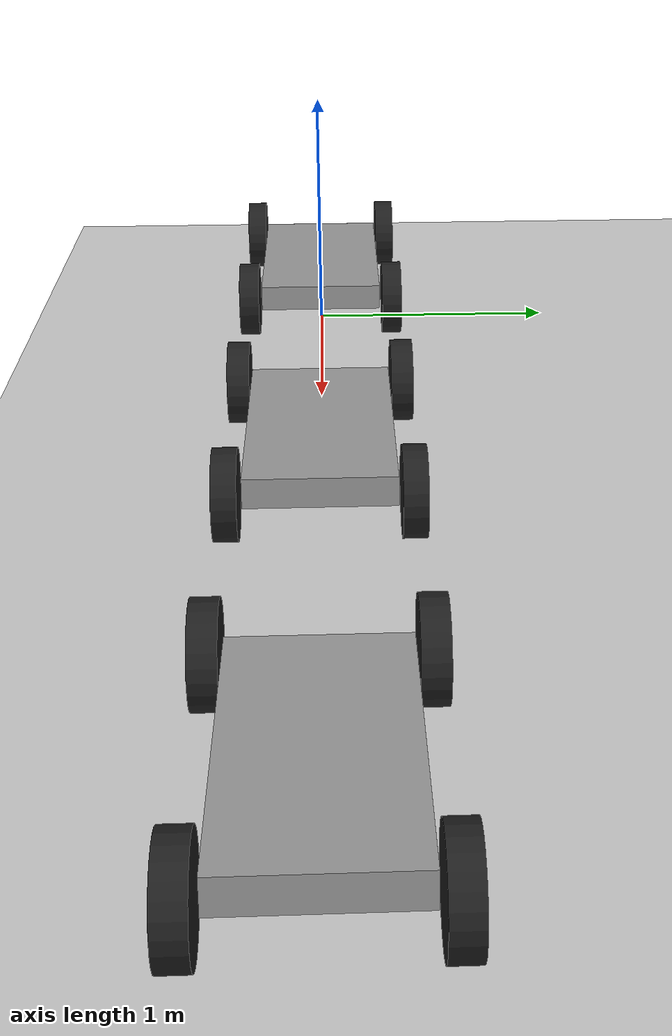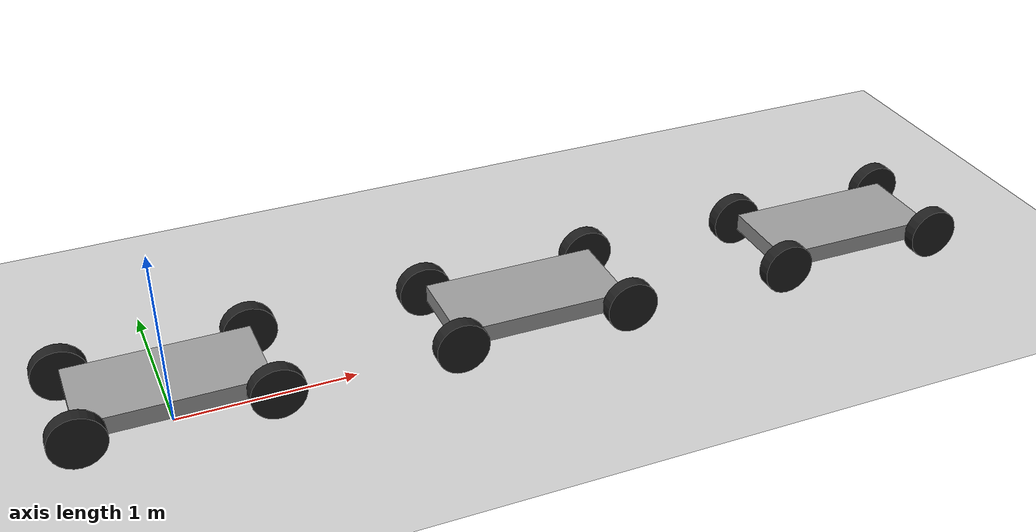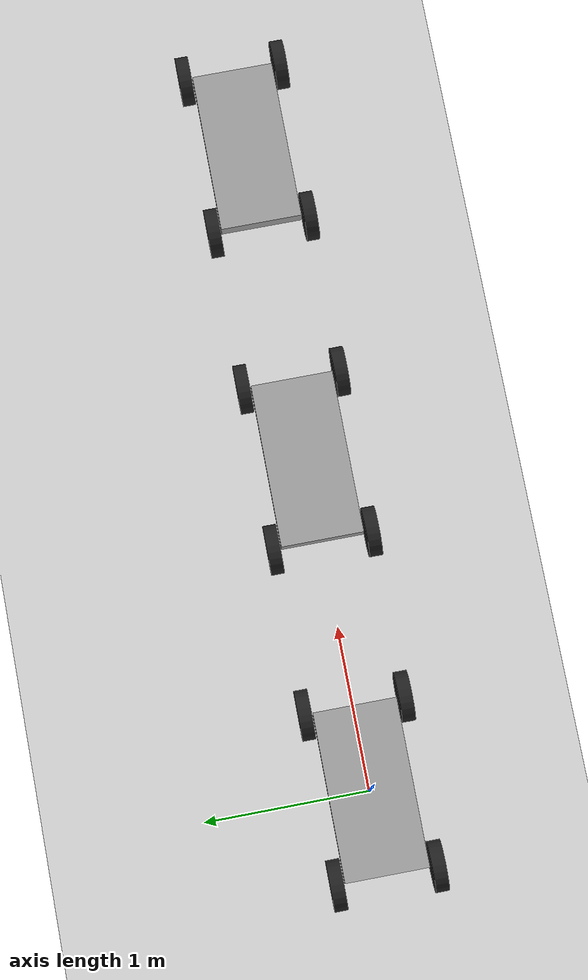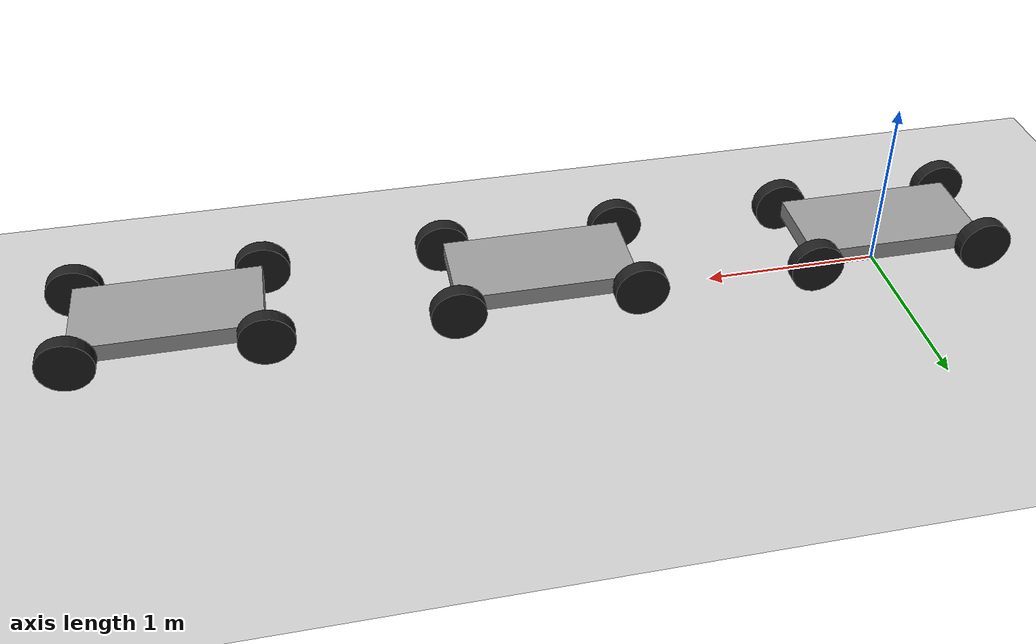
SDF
<?xml version="1.0" ?>
<sdf version="1.6">
  <world name="my_world">
    <!-- 环境光 -->
    <include>
      <uri>model://sun</uri>
    </include>

    <!-- 地面 -->
    <include>
      <uri>model://ground_plane</uri>
      <script>
        <uri>file://media/materials/scripts/gazebo.material</uri>
        <name>Gazebo/White</name>
      </script>
    </include>

    <model name='cart_front_steer'>
        <!-- A testing model -->
      <include>
        <uri>model://cart_front_steer</uri>
	<name>cart_front_steer_1</name>
	<pose>0 0 0.1 0 0 0</pose>
      </include>

        <!-- A testing model -->
      <include>
        <uri>model://cart_front_steer</uri>
	<name>cart_front_steer_2</name>
	<pose>2.0 0 0.1 0 0 0</pose>
      </include>

        <!-- A testing model -->
      <include>
        <uri>model://cart_front_steer</uri>
	<name>cart_front_steer_3</name>
	<pose>4.0 0 0.1 0 0 0</pose>
      </include>

      <joint name="fixed_joint_1" type="fixed">
        <parent>cart_front_steer_1::chassis</parent>
        <child>cart_front_steer_2::chassis</child>
      </joint>

    </model>

  </world>
</sdf>

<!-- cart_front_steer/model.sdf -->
<sdf version="1.5">
  <model name="cart_front_steer">
    <link name="chassis">
      <pose>0 0 0.15  0 0 0</pose>
      <inertial>
        <pose>0.1 0 0  0 0 0</pose>
        <mass>10</mass>
        <inertia>
          <ixx>0.21666666666666667</ixx>
          <iyy>0.8416666666666667</iyy>
          <izz>1.0416666666666667</izz>
          <ixy>0</ixy>
          <ixz>0</ixz>
          <iyz>0</iyz>
        </inertia>
      </inertial>
      <collision name="collision">
        <geometry>
          <box>
            <size>1.0 0.5 0.1</size>
          </box>
        </geometry>
      </collision>
      <visual name="visual">
        <geometry>
          <box>
            <size>1.0 0.5 0.1</size>
          </box>
        </geometry>
        <material>
          <script>
            <uri>file://media/materials/scripts/gazebo.material</uri>
            <name>Gazebo/Grey</name>
          </script>
        </material>
      </visual>
    </link>

    <link name="wheel_front_left">
      <pose>0.5 0.298 0.15  -1.5707963267948966 -0.08726646259971647 0</pose>
      <inertial>
        <mass>0.5</mass>
        <inertia>
          <ixx>0.0030791666666666667</ixx>
          <iyy>0.0030791666666666667</iyy>
          <izz>0.005625</izz>
          <ixy>0</ixy>
          <ixz>0</ixz>
          <iyz>0</iyz>
        </inertia>
      </inertial>
      <collision name="collision">
        <geometry>
          <cylinder>
            <radius>0.15</radius>
            <length>0.08</length>
          </cylinder>
        </geometry>
      </collision>
      <visual name="visual">
        <geometry>
          <cylinder>
            <radius>0.15</radius>
            <length>0.08</length>
          </cylinder>
        </geometry>
        <material>
          <script>
            <uri>file://media/materials/scripts/gazebo.material</uri>
            <name>Gazebo/Black</name>
          </script>
        </material>
      </visual>
    </link>

    <joint name="wheel_front_left_steer_spin" type="universal">
      <parent>chassis</parent>
      <child>wheel_front_left</child>
      <axis>
        <xyz>0 -1 0</xyz>
        <limit>
          <lower>-0.6108652381980153</lower>
          <upper>0.6108652381980153</upper>
        </limit>
      </axis>
      <axis2>
        <xyz>0 0 1</xyz>
      </axis2>
    </joint>

    <link name="wheel_front_right">
      <pose>0.5 -0.298 0.15  -1.5707963267948966 -0.08726646259971647 0</pose>
      <inertial>
        <mass>0.5</mass>
        <inertia>
          <ixx>0.0030791666666666667</ixx>
          <iyy>0.0030791666666666667</iyy>
          <izz>0.005625</izz>
          <ixy>0</ixy>
          <ixz>0</ixz>
          <iyz>0</iyz>
        </inertia>
      </inertial>
      <collision name="collision">
        <geometry>
          <cylinder>
            <radius>0.15</radius>
            <length>0.08</length>
          </cylinder>
        </geometry>
      </collision>
      <visual name="visual">
        <geometry>
          <cylinder>
            <radius>0.15</radius>
            <length>0.08</length>
          </cylinder>
        </geometry>
        <material>
          <script>
            <uri>file://media/materials/scripts/gazebo.material</uri>
            <name>Gazebo/Black</name>
          </script>
        </material>
      </visual>
    </link>

    <joint name="wheel_front_right_steer_spin" type="universal">
      <parent>chassis</parent>
      <child>wheel_front_right</child>
      <axis>
        <xyz>0 -1 0</xyz>
        <limit>
          <lower>-0.6108652381980153</lower>
          <upper>0.6108652381980153</upper>
        </limit>
      </axis>
      <axis2>
        <xyz>0 0 1</xyz>
      </axis2>
    </joint>

    <link name="wheel_rear_left">
      <pose>-0.5 0.298 0.15  -1.5707963267948966 0 0</pose>
      <inertial>
        <mass>0.5</mass>
        <inertia>
          <ixx>0.0030791666666666667</ixx>
          <iyy>0.0030791666666666667</iyy>
          <izz>0.005625</izz>
          <ixy>0</ixy>
          <ixz>0</ixz>
          <iyz>0</iyz>
        </inertia>
      </inertial>
      <collision name="collision">
        <geometry>
          <cylinder>
            <radius>0.15</radius>
            <length>0.08</length>
          </cylinder>
        </geometry>
      </collision>
      <visual name="visual">
        <geometry>
          <cylinder>
            <radius>0.15</radius>
            <length>0.08</length>
          </cylinder>
        </geometry>
        <material>
          <script>
            <uri>file://media/materials/scripts/gazebo.material</uri>
            <name>Gazebo/Black</name>
          </script>
        </material>
      </visual>
    </link>
    <joint name="wheel_rear_left_spin" type="revolute">
      <parent>chassis</parent>
      <child>wheel_rear_left</child>
      <axis>
        <xyz>0 0 1</xyz>
      </axis>
    </joint>

    <link name="wheel_rear_right">
      <pose>-0.5 -0.298 0.15  -1.5707963267948966 0 0</pose>
      <inertial>
        <mass>0.5</mass>
        <inertia>
          <ixx>0.0030791666666666667</ixx>
          <iyy>0.0030791666666666667</iyy>
          <izz>0.005625</izz>
          <ixy>0</ixy>
          <ixz>0</ixz>
          <iyz>0</iyz>
        </inertia>
      </inertial>
      <collision name="collision">
        <geometry>
          <cylinder>
            <radius>0.15</radius>
            <length>0.08</length>
          </cylinder>
        </geometry>
      </collision>
      <visual name="visual">
        <geometry>
          <cylinder>
            <radius>0.15</radius>
            <length>0.08</length>
          </cylinder>
        </geometry>
        <material>
          <script>
            <uri>file://media/materials/scripts/gazebo.material</uri>
            <name>Gazebo/Black</name>
          </script>
        </material>
      </visual>
    </link>
    <joint name="wheel_rear_right_spin" type="revolute">
      <parent>chassis</parent>
      <child>wheel_rear_right</child>
      <axis>
        <xyz>0 0 1</xyz>
      </axis>
    </joint>

  </model>
</sdf>
